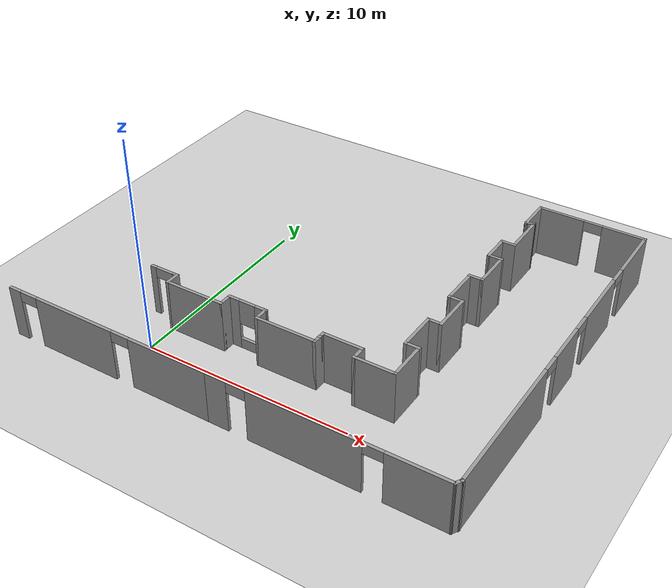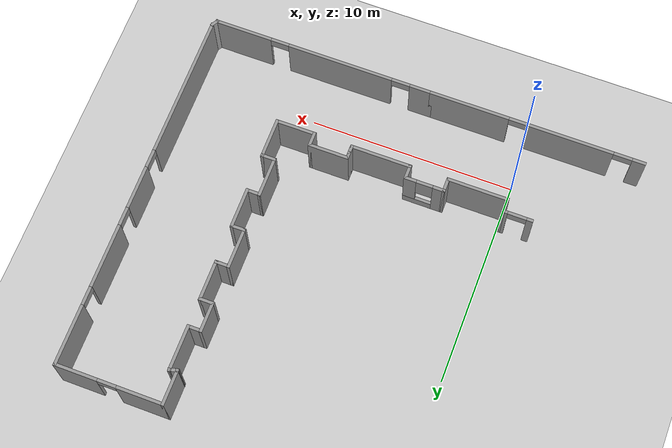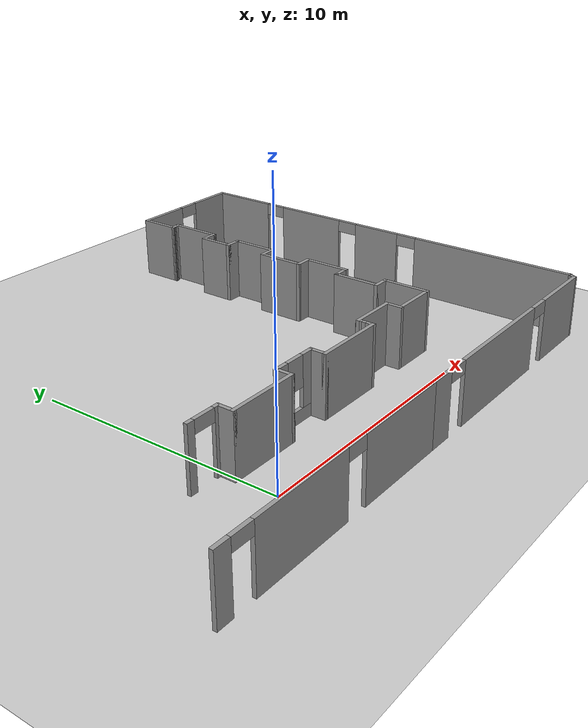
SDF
<sdf version="1.6">
 <world name="default">
  <model name="ground_plane">
   <static>1</static>
   <link name="link">
    <collision name="collision">
     <geometry><plane><normal>0 0 1</normal><size>100 100</size></plane></geometry>
     <surface><friction><ode><mu>100</mu><mu2>50</mu2></ode></friction></surface>
    </collision>
    <visual name="visual">
     <cast_shadows>0</cast_shadows>
     <geometry><plane><normal>0 0 1</normal><size>100 100</size></plane></geometry>
     <material>
      <script><uri>file://media/materials/scripts/gazebo.material</uri><name>Gazebo/Grey</name></script>
     </material>
    </visual>
   </link>
  </model>
  <model name="mff_2fl">
   <pose>-0.86779 5.06075 0 0 -0 0</pose>
   <link name="Wall_34">
    <pose>0.105099 -2.88461 0 0 -0 0</pose>
    <visual name="Wall_34_Visual_0">
     <pose>-0.59497 0 1.25 0 -0 0</pose>
     <geometry><box><size>0.31006 0.15 2.5</size></box></geometry>
     <material>
      <script><uri>file://media/materials/scripts/gazebo.material</uri><name>Gazebo/Grey</name></script>
      <ambient>1 1 1 1</ambient>
     </material>
    </visual>
    <collision name="Wall_34_Collision_0">
     <geometry><box><size>0.31006 0.15 2.5</size></box></geometry>
     <pose>-0.59497 0 1.25 0 -0 0</pose>
    </collision>
    <visual name="Wall_34_Visual_1">
     <pose>0.60503 0 1.25 0 -0 0</pose>
     <geometry><box><size>0.28994 0.15 2.5</size></box></geometry>
     <material>
      <script><uri>file://media/materials/scripts/gazebo.material</uri><name>Gazebo/Grey</name></script>
      <ambient>1 1 1 1</ambient>
     </material>
    </visual>
    <collision name="Wall_34_Collision_1">
     <geometry><box><size>0.28994 0.15 2.5</size></box></geometry>
     <pose>0.60503 0 1.25 0 -0 0</pose>
    </collision>
    <visual name="Wall_34_Visual_2">
     <pose>0.01006 0 2.25 0 -0 0</pose>
     <geometry><box><size>0.9 0.15 0.5</size></box></geometry>
     <material>
      <script><uri>file://media/materials/scripts/gazebo.material</uri><name>Gazebo/Grey</name></script>
      <ambient>1 1 1 1</ambient>
     </material>
    </visual>
    <collision name="Wall_34_Collision_2">
     <geometry><box><size>0.9 0.15 0.5</size></box></geometry>
     <pose>0.01006 0 2.25 0 -0 0</pose>
    </collision>
   </link>
   <link name="Wall_35">
    <collision name="Wall_35_Collision">
     <geometry><box><size>0.75 0.15 2.5</size></box></geometry>
     <pose>0 0 1.25 0 -0 0</pose>
    </collision>
    <visual name="Wall_35_Visual">
     <pose>0 0 1.25 0 -0 0</pose>
     <geometry><box><size>0.75 0.15 2.5</size></box></geometry>
     <material>
      <script><uri>file://media/materials/scripts/gazebo.material</uri><name>Gazebo/Grey</name></script>
      <ambient>1 1 1 1</ambient>
     </material>
    </visual>
    <pose>0.780099 -3.18461 0 0 0 -1.5708</pose>
   </link>
   <link name="Wall_36">
    <collision name="Wall_36_Collision">
     <geometry><box><size>3 0.15 2.5</size></box></geometry>
     <pose>0 0 1.25 0 -0 0</pose>
    </collision>
    <visual name="Wall_36_Visual">
     <pose>0 0 1.25 0 -0 0</pose>
     <geometry><box><size>3 0.15 2.5</size></box></geometry>
     <material>
      <script><uri>file://media/materials/scripts/gazebo.material</uri><name>Gazebo/Grey</name></script>
      <ambient>1 1 1 1</ambient>
     </material>
    </visual>
    <pose>2.2051 -3.48461 0 0 -0 0</pose>
   </link>
   <link name="Wall_37">
    <collision name="Wall_37_Collision">
     <geometry><box><size>0.75 0.15 2.5</size></box></geometry>
     <pose>0 0 1.25 0 -0 0</pose>
    </collision>
    <visual name="Wall_37_Visual">
     <pose>0 0 1.25 0 -0 0</pose>
     <geometry><box><size>0.75 0.15 2.5</size></box></geometry>
     <material>
      <script><uri>file://media/materials/scripts/gazebo.material</uri><name>Gazebo/Grey</name></script>
      <ambient>1 1 1 1</ambient>
     </material>
    </visual>
    <pose>3.6301 -3.18461 0 0 -0 1.5708</pose>
   </link>
   <link name="Wall_39">
    <collision name="Wall_39_Collision">
     <geometry><box><size>0.75 0.15 2.5</size></box></geometry>
     <pose>0 0 1.25 0 -0 0</pose>
    </collision>
    <visual name="Wall_39_Visual">
     <pose>0 0 1.25 0 -0 0</pose>
     <geometry><box><size>0.75 0.15 2.5</size></box></geometry>
     <material>
      <script><uri>file://media/materials/scripts/gazebo.material</uri><name>Gazebo/Grey</name></script>
      <ambient>1 1 1 1</ambient>
     </material>
    </visual>
    <pose>5.4801 -3.18461 0 0 0 -1.5708</pose>
   </link>
   <link name="Wall_41">
    <pose>4.5551 -2.88461 0 0 -0 0</pose>
    <visual name="Wall_41_Visual_0">
     <pose>-0.698853 0 1.25 0 -0 0</pose>
     <geometry><box><size>0.602294 0.15 2.5</size></box></geometry>
     <material>
      <script><uri>file://media/materials/scripts/gazebo.material</uri><name>Gazebo/Grey</name></script>
      <ambient>1 1 1 1</ambient>
     </material>
    </visual>
    <collision name="Wall_41_Collision_0">
     <geometry><box><size>0.602294 0.15 2.5</size></box></geometry>
     <pose>-0.698853 0 1.25 0 -0 0</pose>
    </collision>
    <visual name="Wall_41_Visual_1">
     <pose>0.301147 0 0.25 0 -0 0</pose>
     <geometry><box><size>1.39771 0.15 0.5</size></box></geometry>
     <material>
      <script><uri>file://media/materials/scripts/gazebo.material</uri><name>Gazebo/Grey</name></script>
      <ambient>1 1 1 1</ambient>
     </material>
    </visual>
    <collision name="Wall_41_Collision_1">
     <geometry><box><size>1.39771 0.15 0.5</size></box></geometry>
     <pose>0.301147 0 0.25 0 -0 0</pose>
    </collision>
    <visual name="Wall_41_Visual_2">
     <pose>0.701147 0 1.5 0 -0 0</pose>
     <geometry><box><size>0.597706 0.15 2</size></box></geometry>
     <material>
      <script><uri>file://media/materials/scripts/gazebo.material</uri><name>Gazebo/Grey</name></script>
      <ambient>1 1 1 1</ambient>
     </material>
    </visual>
    <collision name="Wall_41_Collision_2">
     <geometry><box><size>0.597706 0.15 2</size></box></geometry>
     <pose>0.701147 0 1.5 0 -0 0</pose>
    </collision>
    <visual name="Wall_41_Visual_3">
     <pose>0.002294 0 1.9 0 -0 0</pose>
     <geometry><box><size>0.8 0.15 1.2</size></box></geometry>
     <material>
      <script><uri>file://media/materials/scripts/gazebo.material</uri><name>Gazebo/Grey</name></script>
      <ambient>1 1 1 1</ambient>
     </material>
    </visual>
    <collision name="Wall_41_Collision_3">
     <geometry><box><size>0.8 0.15 1.2</size></box></geometry>
     <pose>0.002294 0 1.9 0 -0 0</pose>
    </collision>
   </link>
   <link name="Wall_47">
    <pose>0.620409 -7.37005 0 0 -0 0</pose>
    <visual name="Wall_47_Visual_0">
     <pose>-4.92711 0 1.25 0 -0 0</pose>
     <geometry><box><size>0.645781 0.15 2.5</size></box></geometry>
     <material>
      <script><uri>file://media/materials/scripts/gazebo.material</uri><name>Gazebo/Grey</name></script>
      <ambient>1 1 1 1</ambient>
     </material>
    </visual>
    <collision name="Wall_47_Collision_0">
     <geometry><box><size>0.645781 0.15 2.5</size></box></geometry>
     <pose>-4.92711 0 1.25 0 -0 0</pose>
    </collision>
    <visual name="Wall_47_Visual_1">
     <pose>-1.62399 0 1.25 0 -0 0</pose>
     <geometry><box><size>4.16047 0.15 2.5</size></box></geometry>
     <material>
      <script><uri>file://media/materials/scripts/gazebo.material</uri><name>Gazebo/Grey</name></script>
      <ambient>1 1 1 1</ambient>
     </material>
    </visual>
    <collision name="Wall_47_Collision_1">
     <geometry><box><size>4.16047 0.15 2.5</size></box></geometry>
     <pose>-1.62399 0 1.25 0 -0 0</pose>
    </collision>
    <visual name="Wall_47_Visual_2">
     <pose>3.30312 0 1.25 0 -0 0</pose>
     <geometry><box><size>3.89375 0.15 2.5</size></box></geometry>
     <material>
      <script><uri>file://media/materials/scripts/gazebo.material</uri><name>Gazebo/Grey</name></script>
      <ambient>1 1 1 1</ambient>
     </material>
    </visual>
    <collision name="Wall_47_Collision_2">
     <geometry><box><size>3.89375 0.15 2.5</size></box></geometry>
     <pose>3.30312 0 1.25 0 -0 0</pose>
    </collision>
    <visual name="Wall_47_Visual_3">
     <pose>-4.15422 0 2.25 0 -0 0</pose>
     <geometry><box><size>0.9 0.15 0.5</size></box></geometry>
     <material>
      <script><uri>file://media/materials/scripts/gazebo.material</uri><name>Gazebo/Grey</name></script>
      <ambient>1 1 1 1</ambient>
     </material>
    </visual>
    <collision name="Wall_47_Collision_3">
     <geometry><box><size>0.9 0.15 0.5</size></box></geometry>
     <pose>-4.15422 0 2.25 0 -0 0</pose>
    </collision>
    <visual name="Wall_47_Visual_4">
     <pose>0.906247 0 2.25 0 -0 0</pose>
     <geometry><box><size>0.9 0.15 0.5</size></box></geometry>
     <material>
      <script><uri>file://media/materials/scripts/gazebo.material</uri><name>Gazebo/Grey</name></script>
      <ambient>1 1 1 1</ambient>
     </material>
    </visual>
    <collision name="Wall_47_Collision_4">
     <geometry><box><size>0.9 0.15 0.5</size></box></geometry>
     <pose>0.906247 0 2.25 0 -0 0</pose>
    </collision>
   </link>
   <link name="Wall_49">
    <collision name="Wall_49_Collision">
     <geometry><box><size>3 0.15 2.5</size></box></geometry>
     <pose>0 0 1.25 0 -0 0</pose>
    </collision>
    <visual name="Wall_49_Visual">
     <pose>0 0 1.25 0 -0 0</pose>
     <geometry><box><size>3 0.15 2.5</size></box></geometry>
     <material>
      <script><uri>file://media/materials/scripts/gazebo.material</uri><name>Gazebo/Grey</name></script>
      <ambient>1 1 1 1</ambient>
     </material>
    </visual>
    <pose>6.9051 -3.48461 0 0 -0 0</pose>
   </link>
   <link name="Wall_51">
    <collision name="Wall_51_Collision">
     <geometry><box><size>0.15 0.15 2.5</size></box></geometry>
     <pose>0 0 1.25 0 -0 0</pose>
    </collision>
    <visual name="Wall_51_Visual">
     <pose>0 0 1.25 0 -0 0</pose>
     <geometry><box><size>0.15 0.15 2.5</size></box></geometry>
     <material>
      <script><uri>file://media/materials/scripts/gazebo.material</uri><name>Gazebo/Grey</name></script>
      <ambient>1 1 1 1</ambient>
     </material>
    </visual>
    <pose>8.3301 -3.13461 0 0 -0 0</pose>
   </link>
   <link name="Wall_52">
    <collision name="Wall_52_Collision">
     <geometry><box><size>0.15 0.15 2.5</size></box></geometry>
     <pose>0 0 1.25 0 -0 0</pose>
    </collision>
    <visual name="Wall_52_Visual">
     <pose>0 0 1.25 0 -0 0</pose>
     <geometry><box><size>0.15 0.15 2.5</size></box></geometry>
     <material>
      <script><uri>file://media/materials/scripts/gazebo.material</uri><name>Gazebo/Grey</name></script>
      <ambient>1 1 1 1</ambient>
     </material>
    </visual>
    <pose>8.3301 -3.13461 0 0 -0 0</pose>
   </link>
   <link name="Wall_54">
    <collision name="Wall_54_Collision">
     <geometry><box><size>0.75 0.15 2.5</size></box></geometry>
     <pose>0 0 1.25 0 -0 0</pose>
    </collision>
    <visual name="Wall_54_Visual">
     <pose>0 0 1.25 0 -0 0</pose>
     <geometry><box><size>0.75 0.15 2.5</size></box></geometry>
     <material>
      <script><uri>file://media/materials/scripts/gazebo.material</uri><name>Gazebo/Grey</name></script>
      <ambient>1 1 1 1</ambient>
     </material>
    </visual>
    <pose>8.3301 -3.18461 0 0 -0 1.5708</pose>
   </link>
   <link name="Wall_55">
    <collision name="Wall_55_Collision">
     <geometry><box><size>2 0.15 2.5</size></box></geometry>
     <pose>0 0 1.25 0 -0 0</pose>
    </collision>
    <visual name="Wall_55_Visual">
     <pose>0 0 1.25 0 -0 0</pose>
     <geometry><box><size>2 0.15 2.5</size></box></geometry>
     <material>
      <script><uri>file://media/materials/scripts/gazebo.material</uri><name>Gazebo/Grey</name></script>
      <ambient>1 1 1 1</ambient>
     </material>
    </visual>
    <pose>9.2551 -2.88461 0 0 -0 0</pose>
   </link>
   <link name="Wall_56">
    <collision name="Wall_56_Collision">
     <geometry><box><size>0.75 0.15 2.5</size></box></geometry>
     <pose>0 0 1.25 0 -0 0</pose>
    </collision>
    <visual name="Wall_56_Visual">
     <pose>0 0 1.25 0 -0 0</pose>
     <geometry><box><size>0.75 0.15 2.5</size></box></geometry>
     <material>
      <script><uri>file://media/materials/scripts/gazebo.material</uri><name>Gazebo/Grey</name></script>
      <ambient>1 1 1 1</ambient>
     </material>
    </visual>
    <pose>10.1801 -3.18461 0 0 0 -1.5708</pose>
   </link>
   <link name="Wall_57">
    <collision name="Wall_57_Collision">
     <geometry><box><size>2 0.15 2.5</size></box></geometry>
     <pose>0 0 1.25 0 -0 0</pose>
    </collision>
    <visual name="Wall_57_Visual">
     <pose>0 0 1.25 0 -0 0</pose>
     <geometry><box><size>2 0.15 2.5</size></box></geometry>
     <material>
      <script><uri>file://media/materials/scripts/gazebo.material</uri><name>Gazebo/Grey</name></script>
      <ambient>1 1 1 1</ambient>
     </material>
    </visual>
    <pose>11.1051 -3.48461 0 0 -0 0</pose>
   </link>
   <link name="Wall_58">
    <collision name="Wall_58_Collision">
     <geometry><box><size>2 0.15 2.5</size></box></geometry>
     <pose>0 0 1.25 0 -0 0</pose>
    </collision>
    <visual name="Wall_58_Visual">
     <pose>0 0 1.25 0 -0 0</pose>
     <geometry><box><size>2 0.15 2.5</size></box></geometry>
     <material>
      <script><uri>file://media/materials/scripts/gazebo.material</uri><name>Gazebo/Grey</name></script>
      <ambient>1 1 1 1</ambient>
     </material>
    </visual>
    <pose>12.0301 -2.55961 0 0 -0 1.5708</pose>
   </link>
   <link name="Wall_61">
    <collision name="Wall_61_Collision">
     <geometry><box><size>0.75 0.15 2.5</size></box></geometry>
     <pose>0 0 1.25 0 -0 0</pose>
    </collision>
    <visual name="Wall_61_Visual">
     <pose>0 0 1.25 0 -0 0</pose>
     <geometry><box><size>0.75 0.15 2.5</size></box></geometry>
     <material>
      <script><uri>file://media/materials/scripts/gazebo.material</uri><name>Gazebo/Grey</name></script>
      <ambient>1 1 1 1</ambient>
     </material>
    </visual>
    <pose>11.7301 -1.63461 0 0 -0 3.14159</pose>
   </link>
   <link name="Wall_62">
    <collision name="Wall_62_Collision">
     <geometry><box><size>2 0.15 2.5</size></box></geometry>
     <pose>0 0 1.25 0 -0 0</pose>
    </collision>
    <visual name="Wall_62_Visual">
     <pose>0 0 1.25 0 -0 0</pose>
     <geometry><box><size>2 0.15 2.5</size></box></geometry>
     <material>
      <script><uri>file://media/materials/scripts/gazebo.material</uri><name>Gazebo/Grey</name></script>
      <ambient>1 1 1 1</ambient>
     </material>
    </visual>
    <pose>11.4301 -0.70961 0 0 -0 1.5708</pose>
   </link>
   <link name="Wall_63">
    <collision name="Wall_63_Collision">
     <geometry><box><size>0.75 0.15 2.5</size></box></geometry>
     <pose>0 0 1.25 0 -0 0</pose>
    </collision>
    <visual name="Wall_63_Visual">
     <pose>0 0 1.25 0 -0 0</pose>
     <geometry><box><size>0.75 0.15 2.5</size></box></geometry>
     <material>
      <script><uri>file://media/materials/scripts/gazebo.material</uri><name>Gazebo/Grey</name></script>
      <ambient>1 1 1 1</ambient>
     </material>
    </visual>
    <pose>11.7301 0.21539 0 0 -0 0</pose>
   </link>
   <link name="Wall_66">
    <collision name="Wall_66_Collision">
     <geometry><box><size>2 0.15 2.5</size></box></geometry>
     <pose>0 0 1.25 0 -0 0</pose>
    </collision>
    <visual name="Wall_66_Visual">
     <pose>0 0 1.25 0 -0 0</pose>
     <geometry><box><size>2 0.15 2.5</size></box></geometry>
     <material>
      <script><uri>file://media/materials/scripts/gazebo.material</uri><name>Gazebo/Grey</name></script>
      <ambient>1 1 1 1</ambient>
     </material>
    </visual>
    <pose>12.0301 1.14039 0 0 -0 1.5708</pose>
   </link>
   <link name="Wall_67">
    <collision name="Wall_67_Collision">
     <geometry><box><size>0.75 0.15 2.5</size></box></geometry>
     <pose>0 0 1.25 0 -0 0</pose>
    </collision>
    <visual name="Wall_67_Visual">
     <pose>0 0 1.25 0 -0 0</pose>
     <geometry><box><size>0.75 0.15 2.5</size></box></geometry>
     <material>
      <script><uri>file://media/materials/scripts/gazebo.material</uri><name>Gazebo/Grey</name></script>
      <ambient>1 1 1 1</ambient>
     </material>
    </visual>
    <pose>11.7301 2.06539 0 0 -0 3.14159</pose>
   </link>
   <link name="Wall_68">
    <collision name="Wall_68_Collision">
     <geometry><box><size>2 0.15 2.5</size></box></geometry>
     <pose>0 0 1.25 0 -0 0</pose>
    </collision>
    <visual name="Wall_68_Visual">
     <pose>0 0 1.25 0 -0 0</pose>
     <geometry><box><size>2 0.15 2.5</size></box></geometry>
     <material>
      <script><uri>file://media/materials/scripts/gazebo.material</uri><name>Gazebo/Grey</name></script>
      <ambient>1 1 1 1</ambient>
     </material>
    </visual>
    <pose>11.4301 2.99039 0 0 -0 1.5708</pose>
   </link>
   <link name="Wall_69">
    <collision name="Wall_69_Collision">
     <geometry><box><size>0.75 0.15 2.5</size></box></geometry>
     <pose>0 0 1.25 0 -0 0</pose>
    </collision>
    <visual name="Wall_69_Visual">
     <pose>0 0 1.25 0 -0 0</pose>
     <geometry><box><size>0.75 0.15 2.5</size></box></geometry>
     <material>
      <script><uri>file://media/materials/scripts/gazebo.material</uri><name>Gazebo/Grey</name></script>
      <ambient>1 1 1 1</ambient>
     </material>
    </visual>
    <pose>11.7301 3.91539 0 0 -0 0</pose>
   </link>
   <link name="Wall_70">
    <collision name="Wall_70_Collision">
     <geometry><box><size>2 0.15 2.5</size></box></geometry>
     <pose>0 0 1.25 0 -0 0</pose>
    </collision>
    <visual name="Wall_70_Visual">
     <pose>0 0 1.25 0 -0 0</pose>
     <geometry><box><size>2 0.15 2.5</size></box></geometry>
     <material>
      <script><uri>file://media/materials/scripts/gazebo.material</uri><name>Gazebo/Grey</name></script>
      <ambient>1 1 1 1</ambient>
     </material>
    </visual>
    <pose>12.0301 4.84039 0 0 -0 1.5708</pose>
   </link>
   <link name="Wall_71">
    <collision name="Wall_71_Collision">
     <geometry><box><size>0.75 0.15 2.5</size></box></geometry>
     <pose>0 0 1.25 0 -0 0</pose>
    </collision>
    <visual name="Wall_71_Visual">
     <pose>0 0 1.25 0 -0 0</pose>
     <geometry><box><size>0.75 0.15 2.5</size></box></geometry>
     <material>
      <script><uri>file://media/materials/scripts/gazebo.material</uri><name>Gazebo/Grey</name></script>
      <ambient>1 1 1 1</ambient>
     </material>
    </visual>
    <pose>11.7301 5.76539 0 0 -0 3.14159</pose>
   </link>
   <link name="Wall_72">
    <collision name="Wall_72_Collision">
     <geometry><box><size>1.5 0.15 2.5</size></box></geometry>
     <pose>0 0 1.25 0 -0 0</pose>
    </collision>
    <visual name="Wall_72_Visual">
     <pose>0 0 1.25 0 -0 0</pose>
     <geometry><box><size>1.5 0.15 2.5</size></box></geometry>
     <material>
      <script><uri>file://media/materials/scripts/gazebo.material</uri><name>Gazebo/Grey</name></script>
      <ambient>1 1 1 1</ambient>
     </material>
    </visual>
    <pose>11.4301 6.44039 0 0 -0 1.5708</pose>
   </link>
   <link name="Wall_76">
    <collision name="Wall_76_Collision">
     <geometry><box><size>0.75 0.15 2.5</size></box></geometry>
     <pose>0 0 1.25 0 -0 0</pose>
    </collision>
    <visual name="Wall_76_Visual">
     <pose>0 0 1.25 0 -0 0</pose>
     <geometry><box><size>0.75 0.15 2.5</size></box></geometry>
     <material>
      <script><uri>file://media/materials/scripts/gazebo.material</uri><name>Gazebo/Grey</name></script>
      <ambient>1 1 1 1</ambient>
     </material>
    </visual>
    <pose>11.7301 7.11539 0 0 -0 0</pose>
   </link>
   <link name="Wall_77">
    <collision name="Wall_77_Collision">
     <geometry><box><size>2.25 0.15 2.5</size></box></geometry>
     <pose>0 0 1.25 0 -0 0</pose>
    </collision>
    <visual name="Wall_77_Visual">
     <pose>0 0 1.25 0 -0 0</pose>
     <geometry><box><size>2.25 0.15 2.5</size></box></geometry>
     <material>
      <script><uri>file://media/materials/scripts/gazebo.material</uri><name>Gazebo/Grey</name></script>
      <ambient>1 1 1 1</ambient>
     </material>
    </visual>
    <pose>12.0301 8.16539 0 0 -0 1.5708</pose>
   </link>
   <link name="Wall_78">
    <collision name="Wall_78_Collision">
     <geometry><box><size>0.5 0.15 2.5</size></box></geometry>
     <pose>0 0 1.25 0 -0 0</pose>
    </collision>
    <visual name="Wall_78_Visual">
     <pose>0 0 1.25 0 -0 0</pose>
     <geometry><box><size>0.5 0.15 2.5</size></box></geometry>
     <material>
      <script><uri>file://media/materials/scripts/gazebo.material</uri><name>Gazebo/Grey</name></script>
      <ambient>1 1 1 1</ambient>
     </material>
    </visual>
    <pose>11.8611 9.1701 0 0 0 -2.87979</pose>
   </link>
   <link name="Wall_79">
    <collision name="Wall_79_Collision">
     <geometry><box><size>1.75 0.15 2.5</size></box></geometry>
     <pose>0 0 1.25 0 -0 0</pose>
    </collision>
    <visual name="Wall_79_Visual">
     <pose>0 0 1.25 0 -0 0</pose>
     <geometry><box><size>1.75 0.15 2.5</size></box></geometry>
     <material>
      <script><uri>file://media/materials/scripts/gazebo.material</uri><name>Gazebo/Grey</name></script>
      <ambient>1 1 1 1</ambient>
     </material>
    </visual>
    <pose>11.692 9.9248 0 0 -0 1.5708</pose>
   </link>
   <link name="Wall_80">
    <pose>14.242 10.7248 0 0 -0 0</pose>
    <visual name="Wall_80_Visual_0">
     <pose>-1.49167 0 1.25 0 -0 0</pose>
     <geometry><box><size>2.26666 0.15 2.5</size></box></geometry>
     <material>
      <script><uri>file://media/materials/scripts/gazebo.material</uri><name>Gazebo/Grey</name></script>
      <ambient>1 1 1 1</ambient>
     </material>
    </visual>
    <collision name="Wall_80_Collision_0">
     <geometry><box><size>2.26666 0.15 2.5</size></box></geometry>
     <pose>-1.49167 0 1.25 0 -0 0</pose>
    </collision>
    <visual name="Wall_80_Visual_1">
     <pose>1.58333 0 1.25 0 -0 0</pose>
     <geometry><box><size>2.08334 0.15 2.5</size></box></geometry>
     <material>
      <script><uri>file://media/materials/scripts/gazebo.material</uri><name>Gazebo/Grey</name></script>
      <ambient>1 1 1 1</ambient>
     </material>
    </visual>
    <collision name="Wall_80_Collision_1">
     <geometry><box><size>2.08334 0.15 2.5</size></box></geometry>
     <pose>1.58333 0 1.25 0 -0 0</pose>
    </collision>
    <visual name="Wall_80_Visual_2">
     <pose>0.091658 0 2.25 0 -0 0</pose>
     <geometry><box><size>0.9 0.15 0.5</size></box></geometry>
     <material>
      <script><uri>file://media/materials/scripts/gazebo.material</uri><name>Gazebo/Grey</name></script>
      <ambient>1 1 1 1</ambient>
     </material>
    </visual>
    <collision name="Wall_80_Collision_2">
     <geometry><box><size>0.9 0.15 0.5</size></box></geometry>
     <pose>0.091658 0 2.25 0 -0 0</pose>
    </collision>
   </link>
   <link name="Wall_81">
    <pose>16.792 1.7998 0 0 0 -1.5708</pose>
    <visual name="Wall_81_Visual_0">
     <pose>-7.51822 0 1.25 0 -0 0</pose>
     <geometry><box><size>2.96355 0.15 2.5</size></box></geometry>
     <material>
      <script><uri>file://media/materials/scripts/gazebo.material</uri><name>Gazebo/Grey</name></script>
      <ambient>1 1 1 1</ambient>
     </material>
    </visual>
    <collision name="Wall_81_Collision_0">
     <geometry><box><size>2.96355 0.15 2.5</size></box></geometry>
     <pose>-7.51822 0 1.25 0 -0 0</pose>
    </collision>
    <visual name="Wall_81_Visual_1">
     <pose>-3.56987 0 1.25 0 -0 0</pose>
     <geometry><box><size>3.13315 0.15 2.5</size></box></geometry>
     <material>
      <script><uri>file://media/materials/scripts/gazebo.material</uri><name>Gazebo/Grey</name></script>
      <ambient>1 1 1 1</ambient>
     </material>
    </visual>
    <collision name="Wall_81_Collision_1">
     <geometry><box><size>3.13315 0.15 2.5</size></box></geometry>
     <pose>-3.56987 0 1.25 0 -0 0</pose>
    </collision>
    <visual name="Wall_81_Visual_2">
     <pose>-0.032018 0 1.25 0 -0 0</pose>
     <geometry><box><size>2.14255 0.15 2.5</size></box></geometry>
     <material>
      <script><uri>file://media/materials/scripts/gazebo.material</uri><name>Gazebo/Grey</name></script>
      <ambient>1 1 1 1</ambient>
     </material>
    </visual>
    <collision name="Wall_81_Collision_2">
     <geometry><box><size>2.14255 0.15 2.5</size></box></geometry>
     <pose>-0.032018 0 1.25 0 -0 0</pose>
    </collision>
    <visual name="Wall_81_Visual_3">
     <pose>5.46963 0 1.25 0 -0 0</pose>
     <geometry><box><size>7.06074 0.15 2.5</size></box></geometry>
     <material>
      <script><uri>file://media/materials/scripts/gazebo.material</uri><name>Gazebo/Grey</name></script>
      <ambient>1 1 1 1</ambient>
     </material>
    </visual>
    <collision name="Wall_81_Collision_3">
     <geometry><box><size>7.06074 0.15 2.5</size></box></geometry>
     <pose>5.46963 0 1.25 0 -0 0</pose>
    </collision>
    <visual name="Wall_81_Visual_4">
     <pose>-5.58645 0 2.25 0 -0 0</pose>
     <geometry><box><size>0.9 0.15 0.5</size></box></geometry>
     <material>
      <script><uri>file://media/materials/scripts/gazebo.material</uri><name>Gazebo/Grey</name></script>
      <ambient>1 1 1 1</ambient>
     </material>
    </visual>
    <collision name="Wall_81_Collision_4">
     <geometry><box><size>0.9 0.15 0.5</size></box></geometry>
     <pose>-5.58645 0 2.25 0 -0 0</pose>
    </collision>
    <visual name="Wall_81_Visual_5">
     <pose>-1.5533 0 2.25 0 -0 0</pose>
     <geometry><box><size>0.9 0.15 0.5</size></box></geometry>
     <material>
      <script><uri>file://media/materials/scripts/gazebo.material</uri><name>Gazebo/Grey</name></script>
      <ambient>1 1 1 1</ambient>
     </material>
    </visual>
    <collision name="Wall_81_Collision_5">
     <geometry><box><size>0.9 0.15 0.5</size></box></geometry>
     <pose>-1.5533 0 2.25 0 -0 0</pose>
    </collision>
    <visual name="Wall_81_Visual_6">
     <pose>1.48926 0 2.25 0 -0 0</pose>
     <geometry><box><size>0.9 0.15 0.5</size></box></geometry>
     <material>
      <script><uri>file://media/materials/scripts/gazebo.material</uri><name>Gazebo/Grey</name></script>
      <ambient>1 1 1 1</ambient>
     </material>
    </visual>
    <collision name="Wall_81_Collision_6">
     <geometry><box><size>0.9 0.15 0.5</size></box></geometry>
     <pose>1.48926 0 2.25 0 -0 0</pose>
    </collision>
   </link>
   <link name="Wall_82">
    <collision name="Wall_82_Collision">
     <geometry><box><size>0.15 0.15 2.5</size></box></geometry>
     <pose>0 0 1.25 0 -0 0</pose>
    </collision>
    <visual name="Wall_82_Visual">
     <pose>0 0 1.25 0 -0 0</pose>
     <geometry><box><size>0.15 0.15 2.5</size></box></geometry>
     <material>
      <script><uri>file://media/materials/scripts/gazebo.material</uri><name>Gazebo/Grey</name></script>
      <ambient>1 1 1 1</ambient>
     </material>
    </visual>
    <pose>16.792 -7.1252 0 0 -0 0</pose>
   </link>
   <link name="Wall_84">
    <pose>11.2204 -7.37005 0 0 -0 0</pose>
    <visual name="Wall_84_Visual_0">
     <pose>-4.92084 0 1.25 0 -0 0</pose>
     <geometry><box><size>1.15833 0.15 2.5</size></box></geometry>
     <material>
      <script><uri>file://media/materials/scripts/gazebo.material</uri><name>Gazebo/Grey</name></script>
      <ambient>1 1 1 1</ambient>
     </material>
    </visual>
    <collision name="Wall_84_Collision_0">
     <geometry><box><size>1.15833 0.15 2.5</size></box></geometry>
     <pose>-4.92084 0 1.25 0 -0 0</pose>
    </collision>
    <visual name="Wall_84_Visual_1">
     <pose>-0.849121 0 1.25 0 -0 0</pose>
     <geometry><box><size>5.18511 0.15 2.5</size></box></geometry>
     <material>
      <script><uri>file://media/materials/scripts/gazebo.material</uri><name>Gazebo/Grey</name></script>
      <ambient>1 1 1 1</ambient>
     </material>
    </visual>
    <collision name="Wall_84_Collision_1">
     <geometry><box><size>5.18511 0.15 2.5</size></box></geometry>
     <pose>-0.849121 0 1.25 0 -0 0</pose>
    </collision>
    <visual name="Wall_84_Visual_2">
     <pose>4.07172 0 1.25 0 -0 0</pose>
     <geometry><box><size>2.85657 0.15 2.5</size></box></geometry>
     <material>
      <script><uri>file://media/materials/scripts/gazebo.material</uri><name>Gazebo/Grey</name></script>
      <ambient>1 1 1 1</ambient>
     </material>
    </visual>
    <collision name="Wall_84_Collision_2">
     <geometry><box><size>2.85657 0.15 2.5</size></box></geometry>
     <pose>4.07172 0 1.25 0 -0 0</pose>
    </collision>
    <visual name="Wall_84_Visual_3">
     <pose>-3.89167 0 2.25 0 -0 0</pose>
     <geometry><box><size>0.9 0.15 0.5</size></box></geometry>
     <material>
      <script><uri>file://media/materials/scripts/gazebo.material</uri><name>Gazebo/Grey</name></script>
      <ambient>1 1 1 1</ambient>
     </material>
    </visual>
    <collision name="Wall_84_Collision_3">
     <geometry><box><size>0.9 0.15 0.5</size></box></geometry>
     <pose>-3.89167 0 2.25 0 -0 0</pose>
    </collision>
    <visual name="Wall_84_Visual_4">
     <pose>2.19343 0 2.25 0 -0 0</pose>
     <geometry><box><size>0.9 0.15 0.5</size></box></geometry>
     <material>
      <script><uri>file://media/materials/scripts/gazebo.material</uri><name>Gazebo/Grey</name></script>
      <ambient>1 1 1 1</ambient>
     </material>
    </visual>
    <collision name="Wall_84_Collision_4">
     <geometry><box><size>0.9 0.15 0.5</size></box></geometry>
     <pose>2.19343 0 2.25 0 -0 0</pose>
    </collision>
   </link>
   <link name="Wall_86">
    <collision name="Wall_86_Collision">
     <geometry><box><size>0.435393 0.15 2.5</size></box></geometry>
     <pose>0 0 1.25 0 -0 0</pose>
    </collision>
    <visual name="Wall_86_Visual">
     <pose>0 0 1.25 0 -0 0</pose>
     <geometry><box><size>0.435393 0.15 2.5</size></box></geometry>
     <material>
      <script><uri>file://media/materials/scripts/gazebo.material</uri><name>Gazebo/Grey</name></script>
      <ambient>1 1 1 1</ambient>
     </material>
    </visual>
    <pose>16.7187 -7.24762 0 0 -0 1.03127</pose>
   </link>
   <static>1</static>
  </model>
 </world>
</sdf>
